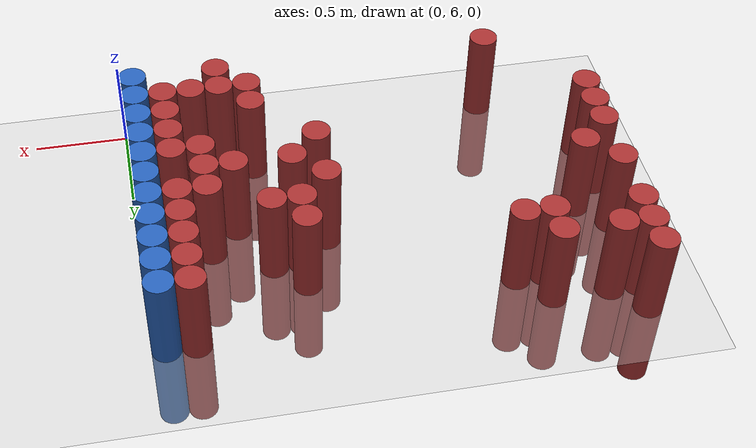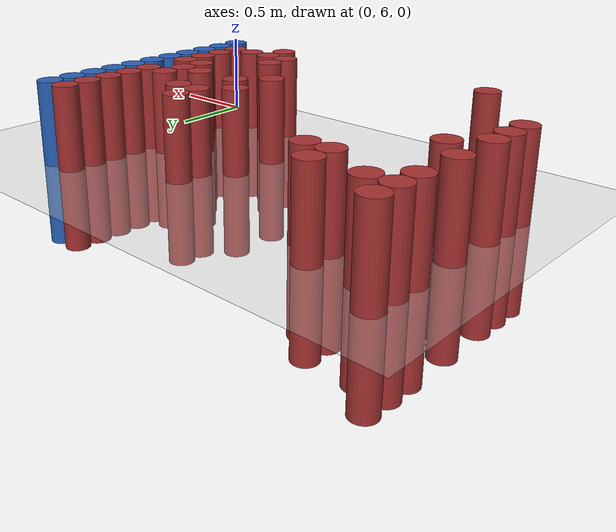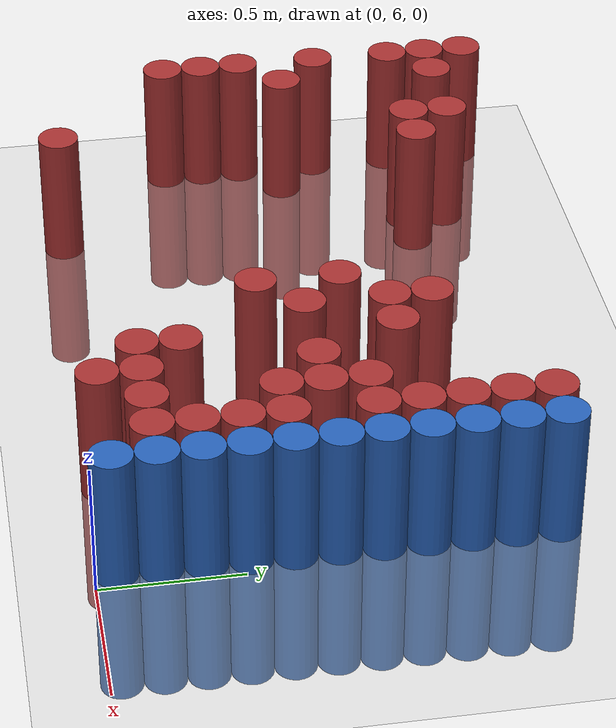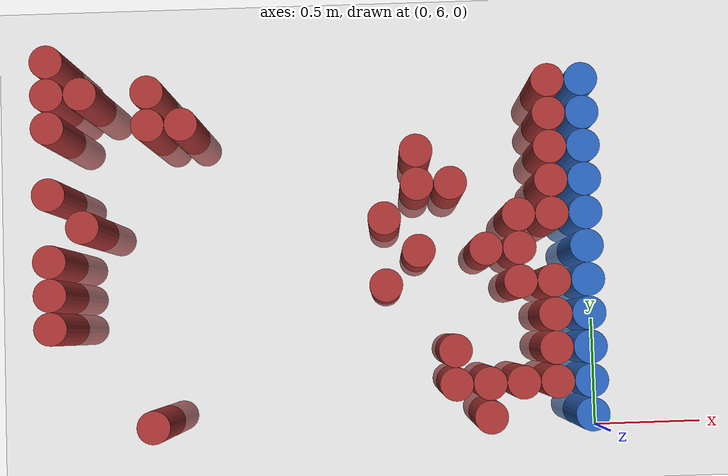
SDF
<sdf version="1.6">
 <world name="default">
  <model name="ground_plane">
   <static>1</static>
   <link name="link">
    <collision name="collision">
     <geometry><plane><normal>0 0 1</normal><size>100 100</size></plane></geometry>
     <surface><friction><ode><mu>100</mu><mu2>50</mu2></ode></friction></surface>
    </collision>
    <visual name="visual">
     <cast_shadows>0</cast_shadows>
     <geometry><plane><normal>0 0 1</normal><size>100 100</size></plane></geometry>
     <material>
      <script><uri>file://media/materials/scripts/gazebo.material</uri><name>Gazebo/Grey</name></script>
     </material>
    </visual>
   </link>
  </model>
  <model name="unit_cylinder_221">
   <static>1</static>
   <pose>-2.475000 6.525000 0.000000 0.000000 0.000000 0.000000</pose>
   <link name="link">
    <inertial>
     <mass>1</mass>
     <inertia><ixx>0.145833</ixx><ixy>0</ixy><ixz>0</ixz><iyy>0.145833</iyy><iyz>0</iyz><izz>0.125</izz></inertia>
    </inertial>
    <collision name="collision">
     <geometry><cylinder><radius>0.075000</radius><length>1</length></cylinder></geometry>
    </collision>
    <visual name="visual">
     <geometry><cylinder><radius>0.075000</radius><length>1</length></cylinder></geometry>
     <material>
      <ambient>0.648000 0.192000 0.192000 1</ambient>
      <diffuse>0.648000 0.192000 0.192000 1</diffuse>
     </material>
     <material>
      <script><name>Gazebo/Grey</name><uri>file://media/materials/scripts/gazebo.material</uri></script>
     </material>
    </visual>
   </link>
  </model>
  <model name="unit_cylinder_222">
   <static>1</static>
   <pose>-2.475000 6.675000 0.000000 0.000000 0.000000 0.000000</pose>
   <link name="link">
    <inertial>
     <mass>1</mass>
     <inertia><ixx>0.145833</ixx><ixy>0</ixy><ixz>0</ixz><iyy>0.145833</iyy><iyz>0</iyz><izz>0.125</izz></inertia>
    </inertial>
    <collision name="collision">
     <geometry><cylinder><radius>0.075000</radius><length>1</length></cylinder></geometry>
    </collision>
    <visual name="visual">
     <geometry><cylinder><radius>0.075000</radius><length>1</length></cylinder></geometry>
     <material>
      <ambient>0.648000 0.192000 0.192000 1</ambient>
      <diffuse>0.648000 0.192000 0.192000 1</diffuse>
     </material>
     <material>
      <script><name>Gazebo/Grey</name><uri>file://media/materials/scripts/gazebo.material</uri></script>
     </material>
    </visual>
   </link>
  </model>
  <model name="unit_cylinder_223">
   <static>1</static>
   <pose>-2.475000 6.825000 0.000000 0.000000 0.000000 0.000000</pose>
   <link name="link">
    <inertial>
     <mass>1</mass>
     <inertia><ixx>0.145833</ixx><ixy>0</ixy><ixz>0</ixz><iyy>0.145833</iyy><iyz>0</iyz><izz>0.125</izz></inertia>
    </inertial>
    <collision name="collision">
     <geometry><cylinder><radius>0.075000</radius><length>1</length></cylinder></geometry>
    </collision>
    <visual name="visual">
     <geometry><cylinder><radius>0.075000</radius><length>1</length></cylinder></geometry>
     <material>
      <ambient>0.648000 0.192000 0.192000 1</ambient>
      <diffuse>0.648000 0.192000 0.192000 1</diffuse>
     </material>
     <material>
      <script><name>Gazebo/Grey</name><uri>file://media/materials/scripts/gazebo.material</uri></script>
     </material>
    </visual>
   </link>
  </model>
  <model name="unit_cylinder_224">
   <static>1</static>
   <pose>-2.475000 7.125000 0.000000 0.000000 0.000000 0.000000</pose>
   <link name="link">
    <inertial>
     <mass>1</mass>
     <inertia><ixx>0.145833</ixx><ixy>0</ixy><ixz>0</ixz><iyy>0.145833</iyy><iyz>0</iyz><izz>0.125</izz></inertia>
    </inertial>
    <collision name="collision">
     <geometry><cylinder><radius>0.075000</radius><length>1</length></cylinder></geometry>
    </collision>
    <visual name="visual">
     <geometry><cylinder><radius>0.075000</radius><length>1</length></cylinder></geometry>
     <material>
      <ambient>0.648000 0.192000 0.192000 1</ambient>
      <diffuse>0.648000 0.192000 0.192000 1</diffuse>
     </material>
     <material>
      <script><name>Gazebo/Grey</name><uri>file://media/materials/scripts/gazebo.material</uri></script>
     </material>
    </visual>
   </link>
  </model>
  <model name="unit_cylinder_225">
   <static>1</static>
   <pose>-2.475000 7.425000 0.000000 0.000000 0.000000 0.000000</pose>
   <link name="link">
    <inertial>
     <mass>1</mass>
     <inertia><ixx>0.145833</ixx><ixy>0</ixy><ixz>0</ixz><iyy>0.145833</iyy><iyz>0</iyz><izz>0.125</izz></inertia>
    </inertial>
    <collision name="collision">
     <geometry><cylinder><radius>0.075000</radius><length>1</length></cylinder></geometry>
    </collision>
    <visual name="visual">
     <geometry><cylinder><radius>0.075000</radius><length>1</length></cylinder></geometry>
     <material>
      <ambient>0.648000 0.192000 0.192000 1</ambient>
      <diffuse>0.648000 0.192000 0.192000 1</diffuse>
     </material>
     <material>
      <script><name>Gazebo/Grey</name><uri>file://media/materials/scripts/gazebo.material</uri></script>
     </material>
    </visual>
   </link>
  </model>
  <model name="unit_cylinder_226">
   <static>1</static>
   <pose>-2.475000 7.575000 0.000000 0.000000 0.000000 0.000000</pose>
   <link name="link">
    <inertial>
     <mass>1</mass>
     <inertia><ixx>0.145833</ixx><ixy>0</ixy><ixz>0</ixz><iyy>0.145833</iyy><iyz>0</iyz><izz>0.125</izz></inertia>
    </inertial>
    <collision name="collision">
     <geometry><cylinder><radius>0.075000</radius><length>1</length></cylinder></geometry>
    </collision>
    <visual name="visual">
     <geometry><cylinder><radius>0.075000</radius><length>1</length></cylinder></geometry>
     <material>
      <ambient>0.648000 0.192000 0.192000 1</ambient>
      <diffuse>0.648000 0.192000 0.192000 1</diffuse>
     </material>
     <material>
      <script><name>Gazebo/Grey</name><uri>file://media/materials/scripts/gazebo.material</uri></script>
     </material>
    </visual>
   </link>
  </model>
  <model name="unit_cylinder_227">
   <static>1</static>
   <pose>-2.475000 7.725000 0.000000 0.000000 0.000000 0.000000</pose>
   <link name="link">
    <inertial>
     <mass>1</mass>
     <inertia><ixx>0.145833</ixx><ixy>0</ixy><ixz>0</ixz><iyy>0.145833</iyy><iyz>0</iyz><izz>0.125</izz></inertia>
    </inertial>
    <collision name="collision">
     <geometry><cylinder><radius>0.075000</radius><length>1</length></cylinder></geometry>
    </collision>
    <visual name="visual">
     <geometry><cylinder><radius>0.075000</radius><length>1</length></cylinder></geometry>
     <material>
      <ambient>0.648000 0.192000 0.192000 1</ambient>
      <diffuse>0.648000 0.192000 0.192000 1</diffuse>
     </material>
     <material>
      <script><name>Gazebo/Grey</name><uri>file://media/materials/scripts/gazebo.material</uri></script>
     </material>
    </visual>
   </link>
  </model>
  <model name="unit_cylinder_235">
   <static>1</static>
   <pose>-2.325000 6.975000 0.000000 0.000000 0.000000 0.000000</pose>
   <link name="link">
    <inertial>
     <mass>1</mass>
     <inertia><ixx>0.145833</ixx><ixy>0</ixy><ixz>0</ixz><iyy>0.145833</iyy><iyz>0</iyz><izz>0.125</izz></inertia>
    </inertial>
    <collision name="collision">
     <geometry><cylinder><radius>0.075000</radius><length>1</length></cylinder></geometry>
    </collision>
    <visual name="visual">
     <geometry><cylinder><radius>0.075000</radius><length>1</length></cylinder></geometry>
     <material>
      <ambient>0.648000 0.192000 0.192000 1</ambient>
      <diffuse>0.648000 0.192000 0.192000 1</diffuse>
     </material>
     <material>
      <script><name>Gazebo/Grey</name><uri>file://media/materials/scripts/gazebo.material</uri></script>
     </material>
    </visual>
   </link>
  </model>
  <model name="unit_cylinder_236">
   <static>1</static>
   <pose>-2.325000 7.575000 0.000000 0.000000 0.000000 0.000000</pose>
   <link name="link">
    <inertial>
     <mass>1</mass>
     <inertia><ixx>0.145833</ixx><ixy>0</ixy><ixz>0</ixz><iyy>0.145833</iyy><iyz>0</iyz><izz>0.125</izz></inertia>
    </inertial>
    <collision name="collision">
     <geometry><cylinder><radius>0.075000</radius><length>1</length></cylinder></geometry>
    </collision>
    <visual name="visual">
     <geometry><cylinder><radius>0.075000</radius><length>1</length></cylinder></geometry>
     <material>
      <ambient>0.648000 0.192000 0.192000 1</ambient>
      <diffuse>0.648000 0.192000 0.192000 1</diffuse>
     </material>
     <material>
      <script><name>Gazebo/Grey</name><uri>file://media/materials/scripts/gazebo.material</uri></script>
     </material>
    </visual>
   </link>
  </model>
  <model name="unit_cylinder_247">
   <static>1</static>
   <pose>-2.025000 6.075000 0.000000 0.000000 0.000000 0.000000</pose>
   <link name="link">
    <inertial>
     <mass>1</mass>
     <inertia><ixx>0.145833</ixx><ixy>0</ixy><ixz>0</ixz><iyy>0.145833</iyy><iyz>0</iyz><izz>0.125</izz></inertia>
    </inertial>
    <collision name="collision">
     <geometry><cylinder><radius>0.075000</radius><length>1</length></cylinder></geometry>
    </collision>
    <visual name="visual">
     <geometry><cylinder><radius>0.075000</radius><length>1</length></cylinder></geometry>
     <material>
      <ambient>0.648000 0.192000 0.192000 1</ambient>
      <diffuse>0.648000 0.192000 0.192000 1</diffuse>
     </material>
     <material>
      <script><name>Gazebo/Grey</name><uri>file://media/materials/scripts/gazebo.material</uri></script>
     </material>
    </visual>
   </link>
  </model>
  <model name="unit_cylinder_248">
   <static>1</static>
   <pose>-2.025000 7.425000 0.000000 0.000000 0.000000 0.000000</pose>
   <link name="link">
    <inertial>
     <mass>1</mass>
     <inertia><ixx>0.145833</ixx><ixy>0</ixy><ixz>0</ixz><iyy>0.145833</iyy><iyz>0</iyz><izz>0.125</izz></inertia>
    </inertial>
    <collision name="collision">
     <geometry><cylinder><radius>0.075000</radius><length>1</length></cylinder></geometry>
    </collision>
    <visual name="visual">
     <geometry><cylinder><radius>0.075000</radius><length>1</length></cylinder></geometry>
     <material>
      <ambient>0.648000 0.192000 0.192000 1</ambient>
      <diffuse>0.648000 0.192000 0.192000 1</diffuse>
     </material>
     <material>
      <script><name>Gazebo/Grey</name><uri>file://media/materials/scripts/gazebo.material</uri></script>
     </material>
    </visual>
   </link>
  </model>
  <model name="unit_cylinder_249">
   <static>1</static>
   <pose>-2.025000 7.575000 0.000000 0.000000 0.000000 0.000000</pose>
   <link name="link">
    <inertial>
     <mass>1</mass>
     <inertia><ixx>0.145833</ixx><ixy>0</ixy><ixz>0</ixz><iyy>0.145833</iyy><iyz>0</iyz><izz>0.125</izz></inertia>
    </inertial>
    <collision name="collision">
     <geometry><cylinder><radius>0.075000</radius><length>1</length></cylinder></geometry>
    </collision>
    <visual name="visual">
     <geometry><cylinder><radius>0.075000</radius><length>1</length></cylinder></geometry>
     <material>
      <ambient>0.648000 0.192000 0.192000 1</ambient>
      <diffuse>0.648000 0.192000 0.192000 1</diffuse>
     </material>
     <material>
      <script><name>Gazebo/Grey</name><uri>file://media/materials/scripts/gazebo.material</uri></script>
     </material>
    </visual>
   </link>
  </model>
  <model name="unit_cylinder_251">
   <static>1</static>
   <pose>-1.875000 7.425000 0.000000 0.000000 0.000000 0.000000</pose>
   <link name="link">
    <inertial>
     <mass>1</mass>
     <inertia><ixx>0.145833</ixx><ixy>0</ixy><ixz>0</ixz><iyy>0.145833</iyy><iyz>0</iyz><izz>0.125</izz></inertia>
    </inertial>
    <collision name="collision">
     <geometry><cylinder><radius>0.075000</radius><length>1</length></cylinder></geometry>
    </collision>
    <visual name="visual">
     <geometry><cylinder><radius>0.075000</radius><length>1</length></cylinder></geometry>
     <material>
      <ambient>0.648000 0.192000 0.192000 1</ambient>
      <diffuse>0.648000 0.192000 0.192000 1</diffuse>
     </material>
     <material>
      <script><name>Gazebo/Grey</name><uri>file://media/materials/scripts/gazebo.material</uri></script>
     </material>
    </visual>
   </link>
  </model>
  <model name="unit_cylinder_255">
   <static>1</static>
   <pose>-0.975000 6.675000 0.000000 0.000000 0.000000 0.000000</pose>
   <link name="link">
    <inertial>
     <mass>1</mass>
     <inertia><ixx>0.145833</ixx><ixy>0</ixy><ixz>0</ixz><iyy>0.145833</iyy><iyz>0</iyz><izz>0.125</izz></inertia>
    </inertial>
    <collision name="collision">
     <geometry><cylinder><radius>0.075000</radius><length>1</length></cylinder></geometry>
    </collision>
    <visual name="visual">
     <geometry><cylinder><radius>0.075000</radius><length>1</length></cylinder></geometry>
     <material>
      <ambient>0.648000 0.192000 0.192000 1</ambient>
      <diffuse>0.648000 0.192000 0.192000 1</diffuse>
     </material>
     <material>
      <script><name>Gazebo/Grey</name><uri>file://media/materials/scripts/gazebo.material</uri></script>
     </material>
    </visual>
   </link>
  </model>
  <model name="unit_cylinder_256">
   <static>1</static>
   <pose>-0.975000 6.975000 0.000000 0.000000 0.000000 0.000000</pose>
   <link name="link">
    <inertial>
     <mass>1</mass>
     <inertia><ixx>0.145833</ixx><ixy>0</ixy><ixz>0</ixz><iyy>0.145833</iyy><iyz>0</iyz><izz>0.125</izz></inertia>
    </inertial>
    <collision name="collision">
     <geometry><cylinder><radius>0.075000</radius><length>1</length></cylinder></geometry>
    </collision>
    <visual name="visual">
     <geometry><cylinder><radius>0.075000</radius><length>1</length></cylinder></geometry>
     <material>
      <ambient>0.648000 0.192000 0.192000 1</ambient>
      <diffuse>0.648000 0.192000 0.192000 1</diffuse>
     </material>
     <material>
      <script><name>Gazebo/Grey</name><uri>file://media/materials/scripts/gazebo.material</uri></script>
     </material>
    </visual>
   </link>
  </model>
  <model name="unit_cylinder_261">
   <static>1</static>
   <pose>-0.825000 6.825000 0.000000 0.000000 0.000000 0.000000</pose>
   <link name="link">
    <inertial>
     <mass>1</mass>
     <inertia><ixx>0.145833</ixx><ixy>0</ixy><ixz>0</ixz><iyy>0.145833</iyy><iyz>0</iyz><izz>0.125</izz></inertia>
    </inertial>
    <collision name="collision">
     <geometry><cylinder><radius>0.075000</radius><length>1</length></cylinder></geometry>
    </collision>
    <visual name="visual">
     <geometry><cylinder><radius>0.075000</radius><length>1</length></cylinder></geometry>
     <material>
      <ambient>0.648000 0.192000 0.192000 1</ambient>
      <diffuse>0.648000 0.192000 0.192000 1</diffuse>
     </material>
     <material>
      <script><name>Gazebo/Grey</name><uri>file://media/materials/scripts/gazebo.material</uri></script>
     </material>
    </visual>
   </link>
  </model>
  <model name="unit_cylinder_262">
   <static>1</static>
   <pose>-0.825000 7.125000 0.000000 0.000000 0.000000 0.000000</pose>
   <link name="link">
    <inertial>
     <mass>1</mass>
     <inertia><ixx>0.145833</ixx><ixy>0</ixy><ixz>0</ixz><iyy>0.145833</iyy><iyz>0</iyz><izz>0.125</izz></inertia>
    </inertial>
    <collision name="collision">
     <geometry><cylinder><radius>0.075000</radius><length>1</length></cylinder></geometry>
    </collision>
    <visual name="visual">
     <geometry><cylinder><radius>0.075000</radius><length>1</length></cylinder></geometry>
     <material>
      <ambient>0.648000 0.192000 0.192000 1</ambient>
      <diffuse>0.648000 0.192000 0.192000 1</diffuse>
     </material>
     <material>
      <script><name>Gazebo/Grey</name><uri>file://media/materials/scripts/gazebo.material</uri></script>
     </material>
    </visual>
   </link>
  </model>
  <model name="unit_cylinder_263">
   <static>1</static>
   <pose>-0.825000 7.275000 0.000000 0.000000 0.000000 0.000000</pose>
   <link name="link">
    <inertial>
     <mass>1</mass>
     <inertia><ixx>0.145833</ixx><ixy>0</ixy><ixz>0</ixz><iyy>0.145833</iyy><iyz>0</iyz><izz>0.125</izz></inertia>
    </inertial>
    <collision name="collision">
     <geometry><cylinder><radius>0.075000</radius><length>1</length></cylinder></geometry>
    </collision>
    <visual name="visual">
     <geometry><cylinder><radius>0.075000</radius><length>1</length></cylinder></geometry>
     <material>
      <ambient>0.648000 0.192000 0.192000 1</ambient>
      <diffuse>0.648000 0.192000 0.192000 1</diffuse>
     </material>
     <material>
      <script><name>Gazebo/Grey</name><uri>file://media/materials/scripts/gazebo.material</uri></script>
     </material>
    </visual>
   </link>
  </model>
  <model name="unit_cylinder_265">
   <static>1</static>
   <pose>-0.675000 6.225000 0.000000 0.000000 0.000000 0.000000</pose>
   <link name="link">
    <inertial>
     <mass>1</mass>
     <inertia><ixx>0.145833</ixx><ixy>0</ixy><ixz>0</ixz><iyy>0.145833</iyy><iyz>0</iyz><izz>0.125</izz></inertia>
    </inertial>
    <collision name="collision">
     <geometry><cylinder><radius>0.075000</radius><length>1</length></cylinder></geometry>
    </collision>
    <visual name="visual">
     <geometry><cylinder><radius>0.075000</radius><length>1</length></cylinder></geometry>
     <material>
      <ambient>0.648000 0.192000 0.192000 1</ambient>
      <diffuse>0.648000 0.192000 0.192000 1</diffuse>
     </material>
     <material>
      <script><name>Gazebo/Grey</name><uri>file://media/materials/scripts/gazebo.material</uri></script>
     </material>
    </visual>
   </link>
  </model>
  <model name="unit_cylinder_266">
   <static>1</static>
   <pose>-0.675000 6.375000 0.000000 0.000000 0.000000 0.000000</pose>
   <link name="link">
    <inertial>
     <mass>1</mass>
     <inertia><ixx>0.145833</ixx><ixy>0</ixy><ixz>0</ixz><iyy>0.145833</iyy><iyz>0</iyz><izz>0.125</izz></inertia>
    </inertial>
    <collision name="collision">
     <geometry><cylinder><radius>0.075000</radius><length>1</length></cylinder></geometry>
    </collision>
    <visual name="visual">
     <geometry><cylinder><radius>0.075000</radius><length>1</length></cylinder></geometry>
     <material>
      <ambient>0.648000 0.192000 0.192000 1</ambient>
      <diffuse>0.648000 0.192000 0.192000 1</diffuse>
     </material>
     <material>
      <script><name>Gazebo/Grey</name><uri>file://media/materials/scripts/gazebo.material</uri></script>
     </material>
    </visual>
   </link>
  </model>
  <model name="unit_cylinder_267">
   <static>1</static>
   <pose>-0.675000 7.125000 0.000000 0.000000 0.000000 0.000000</pose>
   <link name="link">
    <inertial>
     <mass>1</mass>
     <inertia><ixx>0.145833</ixx><ixy>0</ixy><ixz>0</ixz><iyy>0.145833</iyy><iyz>0</iyz><izz>0.125</izz></inertia>
    </inertial>
    <collision name="collision">
     <geometry><cylinder><radius>0.075000</radius><length>1</length></cylinder></geometry>
    </collision>
    <visual name="visual">
     <geometry><cylinder><radius>0.075000</radius><length>1</length></cylinder></geometry>
     <material>
      <ambient>0.648000 0.192000 0.192000 1</ambient>
      <diffuse>0.648000 0.192000 0.192000 1</diffuse>
     </material>
     <material>
      <script><name>Gazebo/Grey</name><uri>file://media/materials/scripts/gazebo.material</uri></script>
     </material>
    </visual>
   </link>
  </model>
  <model name="unit_cylinder_271">
   <static>1</static>
   <pose>-0.525000 6.075000 0.000000 0.000000 0.000000 0.000000</pose>
   <link name="link">
    <inertial>
     <mass>1</mass>
     <inertia><ixx>0.145833</ixx><ixy>0</ixy><ixz>0</ixz><iyy>0.145833</iyy><iyz>0</iyz><izz>0.125</izz></inertia>
    </inertial>
    <collision name="collision">
     <geometry><cylinder><radius>0.075000</radius><length>1</length></cylinder></geometry>
    </collision>
    <visual name="visual">
     <geometry><cylinder><radius>0.075000</radius><length>1</length></cylinder></geometry>
     <material>
      <ambient>0.648000 0.192000 0.192000 1</ambient>
      <diffuse>0.648000 0.192000 0.192000 1</diffuse>
     </material>
     <material>
      <script><name>Gazebo/Grey</name><uri>file://media/materials/scripts/gazebo.material</uri></script>
     </material>
    </visual>
   </link>
  </model>
  <model name="unit_cylinder_272">
   <static>1</static>
   <pose>-0.525000 6.225000 0.000000 0.000000 0.000000 0.000000</pose>
   <link name="link">
    <inertial>
     <mass>1</mass>
     <inertia><ixx>0.145833</ixx><ixy>0</ixy><ixz>0</ixz><iyy>0.145833</iyy><iyz>0</iyz><izz>0.125</izz></inertia>
    </inertial>
    <collision name="collision">
     <geometry><cylinder><radius>0.075000</radius><length>1</length></cylinder></geometry>
    </collision>
    <visual name="visual">
     <geometry><cylinder><radius>0.075000</radius><length>1</length></cylinder></geometry>
     <material>
      <ambient>0.648000 0.192000 0.192000 1</ambient>
      <diffuse>0.648000 0.192000 0.192000 1</diffuse>
     </material>
     <material>
      <script><name>Gazebo/Grey</name><uri>file://media/materials/scripts/gazebo.material</uri></script>
     </material>
    </visual>
   </link>
  </model>
  <model name="unit_cylinder_273">
   <static>1</static>
   <pose>-0.525000 6.825000 0.000000 0.000000 0.000000 0.000000</pose>
   <link name="link">
    <inertial>
     <mass>1</mass>
     <inertia><ixx>0.145833</ixx><ixy>0</ixy><ixz>0</ixz><iyy>0.145833</iyy><iyz>0</iyz><izz>0.125</izz></inertia>
    </inertial>
    <collision name="collision">
     <geometry><cylinder><radius>0.075000</radius><length>1</length></cylinder></geometry>
    </collision>
    <visual name="visual">
     <geometry><cylinder><radius>0.075000</radius><length>1</length></cylinder></geometry>
     <material>
      <ambient>0.648000 0.192000 0.192000 1</ambient>
      <diffuse>0.648000 0.192000 0.192000 1</diffuse>
     </material>
     <material>
      <script><name>Gazebo/Grey</name><uri>file://media/materials/scripts/gazebo.material</uri></script>
     </material>
    </visual>
   </link>
  </model>
  <model name="unit_cylinder_279">
   <static>1</static>
   <pose>-0.375000 6.225000 0.000000 0.000000 0.000000 0.000000</pose>
   <link name="link">
    <inertial>
     <mass>1</mass>
     <inertia><ixx>0.145833</ixx><ixy>0</ixy><ixz>0</ixz><iyy>0.145833</iyy><iyz>0</iyz><izz>0.125</izz></inertia>
    </inertial>
    <collision name="collision">
     <geometry><cylinder><radius>0.075000</radius><length>1</length></cylinder></geometry>
    </collision>
    <visual name="visual">
     <geometry><cylinder><radius>0.075000</radius><length>1</length></cylinder></geometry>
     <material>
      <ambient>0.648000 0.192000 0.192000 1</ambient>
      <diffuse>0.648000 0.192000 0.192000 1</diffuse>
     </material>
     <material>
      <script><name>Gazebo/Grey</name><uri>file://media/materials/scripts/gazebo.material</uri></script>
     </material>
    </visual>
   </link>
  </model>
  <model name="unit_cylinder_280">
   <static>1</static>
   <pose>-0.375000 6.675000 0.000000 0.000000 0.000000 0.000000</pose>
   <link name="link">
    <inertial>
     <mass>1</mass>
     <inertia><ixx>0.145833</ixx><ixy>0</ixy><ixz>0</ixz><iyy>0.145833</iyy><iyz>0</iyz><izz>0.125</izz></inertia>
    </inertial>
    <collision name="collision">
     <geometry><cylinder><radius>0.075000</radius><length>1</length></cylinder></geometry>
    </collision>
    <visual name="visual">
     <geometry><cylinder><radius>0.075000</radius><length>1</length></cylinder></geometry>
     <material>
      <ambient>0.648000 0.192000 0.192000 1</ambient>
      <diffuse>0.648000 0.192000 0.192000 1</diffuse>
     </material>
     <material>
      <script><name>Gazebo/Grey</name><uri>file://media/materials/scripts/gazebo.material</uri></script>
     </material>
    </visual>
   </link>
  </model>
  <model name="unit_cylinder_281">
   <static>1</static>
   <pose>-0.375000 6.825000 0.000000 0.000000 0.000000 0.000000</pose>
   <link name="link">
    <inertial>
     <mass>1</mass>
     <inertia><ixx>0.145833</ixx><ixy>0</ixy><ixz>0</ixz><iyy>0.145833</iyy><iyz>0</iyz><izz>0.125</izz></inertia>
    </inertial>
    <collision name="collision">
     <geometry><cylinder><radius>0.075000</radius><length>1</length></cylinder></geometry>
    </collision>
    <visual name="visual">
     <geometry><cylinder><radius>0.075000</radius><length>1</length></cylinder></geometry>
     <material>
      <ambient>0.648000 0.192000 0.192000 1</ambient>
      <diffuse>0.648000 0.192000 0.192000 1</diffuse>
     </material>
     <material>
      <script><name>Gazebo/Grey</name><uri>file://media/materials/scripts/gazebo.material</uri></script>
     </material>
    </visual>
   </link>
  </model>
  <model name="unit_cylinder_282">
   <static>1</static>
   <pose>-0.375000 6.975000 0.000000 0.000000 0.000000 0.000000</pose>
   <link name="link">
    <inertial>
     <mass>1</mass>
     <inertia><ixx>0.145833</ixx><ixy>0</ixy><ixz>0</ixz><iyy>0.145833</iyy><iyz>0</iyz><izz>0.125</izz></inertia>
    </inertial>
    <collision name="collision">
     <geometry><cylinder><radius>0.075000</radius><length>1</length></cylinder></geometry>
    </collision>
    <visual name="visual">
     <geometry><cylinder><radius>0.075000</radius><length>1</length></cylinder></geometry>
     <material>
      <ambient>0.648000 0.192000 0.192000 1</ambient>
      <diffuse>0.648000 0.192000 0.192000 1</diffuse>
     </material>
     <material>
      <script><name>Gazebo/Grey</name><uri>file://media/materials/scripts/gazebo.material</uri></script>
     </material>
    </visual>
   </link>
  </model>
  <model name="unit_cylinder_291">
   <static>1</static>
   <pose>-0.225000 6.225000 0.000000 0.000000 0.000000 0.000000</pose>
   <link name="link">
    <inertial>
     <mass>1</mass>
     <inertia><ixx>0.145833</ixx><ixy>0</ixy><ixz>0</ixz><iyy>0.145833</iyy><iyz>0</iyz><izz>0.125</izz></inertia>
    </inertial>
    <collision name="collision">
     <geometry><cylinder><radius>0.075000</radius><length>1</length></cylinder></geometry>
    </collision>
    <visual name="visual">
     <geometry><cylinder><radius>0.075000</radius><length>1</length></cylinder></geometry>
     <material>
      <ambient>0.648000 0.192000 0.192000 1</ambient>
      <diffuse>0.648000 0.192000 0.192000 1</diffuse>
     </material>
     <material>
      <script><name>Gazebo/Grey</name><uri>file://media/materials/scripts/gazebo.material</uri></script>
     </material>
    </visual>
   </link>
  </model>
  <model name="unit_cylinder_292">
   <static>1</static>
   <pose>-0.225000 6.375000 0.000000 0.000000 0.000000 0.000000</pose>
   <link name="link">
    <inertial>
     <mass>1</mass>
     <inertia><ixx>0.145833</ixx><ixy>0</ixy><ixz>0</ixz><iyy>0.145833</iyy><iyz>0</iyz><izz>0.125</izz></inertia>
    </inertial>
    <collision name="collision">
     <geometry><cylinder><radius>0.075000</radius><length>1</length></cylinder></geometry>
    </collision>
    <visual name="visual">
     <geometry><cylinder><radius>0.075000</radius><length>1</length></cylinder></geometry>
     <material>
      <ambient>0.648000 0.192000 0.192000 1</ambient>
      <diffuse>0.648000 0.192000 0.192000 1</diffuse>
     </material>
     <material>
      <script><name>Gazebo/Grey</name><uri>file://media/materials/scripts/gazebo.material</uri></script>
     </material>
    </visual>
   </link>
  </model>
  <model name="unit_cylinder_293">
   <static>1</static>
   <pose>-0.225000 6.525000 0.000000 0.000000 0.000000 0.000000</pose>
   <link name="link">
    <inertial>
     <mass>1</mass>
     <inertia><ixx>0.145833</ixx><ixy>0</ixy><ixz>0</ixz><iyy>0.145833</iyy><iyz>0</iyz><izz>0.125</izz></inertia>
    </inertial>
    <collision name="collision">
     <geometry><cylinder><radius>0.075000</radius><length>1</length></cylinder></geometry>
    </collision>
    <visual name="visual">
     <geometry><cylinder><radius>0.075000</radius><length>1</length></cylinder></geometry>
     <material>
      <ambient>0.648000 0.192000 0.192000 1</ambient>
      <diffuse>0.648000 0.192000 0.192000 1</diffuse>
     </material>
     <material>
      <script><name>Gazebo/Grey</name><uri>file://media/materials/scripts/gazebo.material</uri></script>
     </material>
    </visual>
   </link>
  </model>
  <model name="unit_cylinder_294">
   <static>1</static>
   <pose>-0.225000 6.675000 0.000000 0.000000 0.000000 0.000000</pose>
   <link name="link">
    <inertial>
     <mass>1</mass>
     <inertia><ixx>0.145833</ixx><ixy>0</ixy><ixz>0</ixz><iyy>0.145833</iyy><iyz>0</iyz><izz>0.125</izz></inertia>
    </inertial>
    <collision name="collision">
     <geometry><cylinder><radius>0.075000</radius><length>1</length></cylinder></geometry>
    </collision>
    <visual name="visual">
     <geometry><cylinder><radius>0.075000</radius><length>1</length></cylinder></geometry>
     <material>
      <ambient>0.648000 0.192000 0.192000 1</ambient>
      <diffuse>0.648000 0.192000 0.192000 1</diffuse>
     </material>
     <material>
      <script><name>Gazebo/Grey</name><uri>file://media/materials/scripts/gazebo.material</uri></script>
     </material>
    </visual>
   </link>
  </model>
  <model name="unit_cylinder_295">
   <static>1</static>
   <pose>-0.225000 6.975000 0.000000 0.000000 0.000000 0.000000</pose>
   <link name="link">
    <inertial>
     <mass>1</mass>
     <inertia><ixx>0.145833</ixx><ixy>0</ixy><ixz>0</ixz><iyy>0.145833</iyy><iyz>0</iyz><izz>0.125</izz></inertia>
    </inertial>
    <collision name="collision">
     <geometry><cylinder><radius>0.075000</radius><length>1</length></cylinder></geometry>
    </collision>
    <visual name="visual">
     <geometry><cylinder><radius>0.075000</radius><length>1</length></cylinder></geometry>
     <material>
      <ambient>0.648000 0.192000 0.192000 1</ambient>
      <diffuse>0.648000 0.192000 0.192000 1</diffuse>
     </material>
     <material>
      <script><name>Gazebo/Grey</name><uri>file://media/materials/scripts/gazebo.material</uri></script>
     </material>
    </visual>
   </link>
  </model>
  <model name="unit_cylinder_296">
   <static>1</static>
   <pose>-0.225000 7.125000 0.000000 0.000000 0.000000 0.000000</pose>
   <link name="link">
    <inertial>
     <mass>1</mass>
     <inertia><ixx>0.145833</ixx><ixy>0</ixy><ixz>0</ixz><iyy>0.145833</iyy><iyz>0</iyz><izz>0.125</izz></inertia>
    </inertial>
    <collision name="collision">
     <geometry><cylinder><radius>0.075000</radius><length>1</length></cylinder></geometry>
    </collision>
    <visual name="visual">
     <geometry><cylinder><radius>0.075000</radius><length>1</length></cylinder></geometry>
     <material>
      <ambient>0.648000 0.192000 0.192000 1</ambient>
      <diffuse>0.648000 0.192000 0.192000 1</diffuse>
     </material>
     <material>
      <script><name>Gazebo/Grey</name><uri>file://media/materials/scripts/gazebo.material</uri></script>
     </material>
    </visual>
   </link>
  </model>
  <model name="unit_cylinder_297">
   <static>1</static>
   <pose>-0.225000 7.275000 0.000000 0.000000 0.000000 0.000000</pose>
   <link name="link">
    <inertial>
     <mass>1</mass>
     <inertia><ixx>0.145833</ixx><ixy>0</ixy><ixz>0</ixz><iyy>0.145833</iyy><iyz>0</iyz><izz>0.125</izz></inertia>
    </inertial>
    <collision name="collision">
     <geometry><cylinder><radius>0.075000</radius><length>1</length></cylinder></geometry>
    </collision>
    <visual name="visual">
     <geometry><cylinder><radius>0.075000</radius><length>1</length></cylinder></geometry>
     <material>
      <ambient>0.648000 0.192000 0.192000 1</ambient>
      <diffuse>0.648000 0.192000 0.192000 1</diffuse>
     </material>
     <material>
      <script><name>Gazebo/Grey</name><uri>file://media/materials/scripts/gazebo.material</uri></script>
     </material>
    </visual>
   </link>
  </model>
  <model name="unit_cylinder_298">
   <static>1</static>
   <pose>-0.225000 7.425000 0.000000 0.000000 0.000000 0.000000</pose>
   <link name="link">
    <inertial>
     <mass>1</mass>
     <inertia><ixx>0.145833</ixx><ixy>0</ixy><ixz>0</ixz><iyy>0.145833</iyy><iyz>0</iyz><izz>0.125</izz></inertia>
    </inertial>
    <collision name="collision">
     <geometry><cylinder><radius>0.075000</radius><length>1</length></cylinder></geometry>
    </collision>
    <visual name="visual">
     <geometry><cylinder><radius>0.075000</radius><length>1</length></cylinder></geometry>
     <material>
      <ambient>0.648000 0.192000 0.192000 1</ambient>
      <diffuse>0.648000 0.192000 0.192000 1</diffuse>
     </material>
     <material>
      <script><name>Gazebo/Grey</name><uri>file://media/materials/scripts/gazebo.material</uri></script>
     </material>
    </visual>
   </link>
  </model>
  <model name="unit_cylinder_299">
   <static>1</static>
   <pose>-0.225000 7.575000 0.000000 0.000000 0.000000 0.000000</pose>
   <link name="link">
    <inertial>
     <mass>1</mass>
     <inertia><ixx>0.145833</ixx><ixy>0</ixy><ixz>0</ixz><iyy>0.145833</iyy><iyz>0</iyz><izz>0.125</izz></inertia>
    </inertial>
    <collision name="collision">
     <geometry><cylinder><radius>0.075000</radius><length>1</length></cylinder></geometry>
    </collision>
    <visual name="visual">
     <geometry><cylinder><radius>0.075000</radius><length>1</length></cylinder></geometry>
     <material>
      <ambient>0.648000 0.192000 0.192000 1</ambient>
      <diffuse>0.648000 0.192000 0.192000 1</diffuse>
     </material>
     <material>
      <script><name>Gazebo/Grey</name><uri>file://media/materials/scripts/gazebo.material</uri></script>
     </material>
    </visual>
   </link>
  </model>
  <model name="unit_cylinder_312">
   <static>1</static>
   <pose>-0.075000 6.075000 0.000000 0.000000 0.000000 0.000000</pose>
   <link name="link">
    <inertial>
     <mass>1</mass>
     <inertia><ixx>0.145833</ixx><ixy>0</ixy><ixz>0</ixz><iyy>0.145833</iyy><iyz>0</iyz><izz>0.125</izz></inertia>
    </inertial>
    <collision name="collision">
     <geometry><cylinder><radius>0.075000</radius><length>1</length></cylinder></geometry>
    </collision>
    <visual name="visual">
     <geometry><cylinder><radius>0.075000</radius><length>1</length></cylinder></geometry>
     <material>
      <ambient>0.152000 0.379000 0.720000 1</ambient>
      <diffuse>0.152000 0.379000 0.720000 1</diffuse>
     </material>
     <material>
      <script><name>Gazebo/Grey</name><uri>file://media/materials/scripts/gazebo.material</uri></script>
     </material>
    </visual>
   </link>
  </model>
  <model name="unit_cylinder_313">
   <static>1</static>
   <pose>-0.075000 6.225000 0.000000 0.000000 0.000000 0.000000</pose>
   <link name="link">
    <inertial>
     <mass>1</mass>
     <inertia><ixx>0.145833</ixx><ixy>0</ixy><ixz>0</ixz><iyy>0.145833</iyy><iyz>0</iyz><izz>0.125</izz></inertia>
    </inertial>
    <collision name="collision">
     <geometry><cylinder><radius>0.075000</radius><length>1</length></cylinder></geometry>
    </collision>
    <visual name="visual">
     <geometry><cylinder><radius>0.075000</radius><length>1</length></cylinder></geometry>
     <material>
      <ambient>0.152000 0.379000 0.720000 1</ambient>
      <diffuse>0.152000 0.379000 0.720000 1</diffuse>
     </material>
     <material>
      <script><name>Gazebo/Grey</name><uri>file://media/materials/scripts/gazebo.material</uri></script>
     </material>
    </visual>
   </link>
  </model>
  <model name="unit_cylinder_314">
   <static>1</static>
   <pose>-0.075000 6.375000 0.000000 0.000000 0.000000 0.000000</pose>
   <link name="link">
    <inertial>
     <mass>1</mass>
     <inertia><ixx>0.145833</ixx><ixy>0</ixy><ixz>0</ixz><iyy>0.145833</iyy><iyz>0</iyz><izz>0.125</izz></inertia>
    </inertial>
    <collision name="collision">
     <geometry><cylinder><radius>0.075000</radius><length>1</length></cylinder></geometry>
    </collision>
    <visual name="visual">
     <geometry><cylinder><radius>0.075000</radius><length>1</length></cylinder></geometry>
     <material>
      <ambient>0.152000 0.379000 0.720000 1</ambient>
      <diffuse>0.152000 0.379000 0.720000 1</diffuse>
     </material>
     <material>
      <script><name>Gazebo/Grey</name><uri>file://media/materials/scripts/gazebo.material</uri></script>
     </material>
    </visual>
   </link>
  </model>
  <model name="unit_cylinder_315">
   <static>1</static>
   <pose>-0.075000 6.525000 0.000000 0.000000 0.000000 0.000000</pose>
   <link name="link">
    <inertial>
     <mass>1</mass>
     <inertia><ixx>0.145833</ixx><ixy>0</ixy><ixz>0</ixz><iyy>0.145833</iyy><iyz>0</iyz><izz>0.125</izz></inertia>
    </inertial>
    <collision name="collision">
     <geometry><cylinder><radius>0.075000</radius><length>1</length></cylinder></geometry>
    </collision>
    <visual name="visual">
     <geometry><cylinder><radius>0.075000</radius><length>1</length></cylinder></geometry>
     <material>
      <ambient>0.152000 0.379000 0.720000 1</ambient>
      <diffuse>0.152000 0.379000 0.720000 1</diffuse>
     </material>
     <material>
      <script><name>Gazebo/Grey</name><uri>file://media/materials/scripts/gazebo.material</uri></script>
     </material>
    </visual>
   </link>
  </model>
  <model name="unit_cylinder_316">
   <static>1</static>
   <pose>-0.075000 6.675000 0.000000 0.000000 0.000000 0.000000</pose>
   <link name="link">
    <inertial>
     <mass>1</mass>
     <inertia><ixx>0.145833</ixx><ixy>0</ixy><ixz>0</ixz><iyy>0.145833</iyy><iyz>0</iyz><izz>0.125</izz></inertia>
    </inertial>
    <collision name="collision">
     <geometry><cylinder><radius>0.075000</radius><length>1</length></cylinder></geometry>
    </collision>
    <visual name="visual">
     <geometry><cylinder><radius>0.075000</radius><length>1</length></cylinder></geometry>
     <material>
      <ambient>0.152000 0.379000 0.720000 1</ambient>
      <diffuse>0.152000 0.379000 0.720000 1</diffuse>
     </material>
     <material>
      <script><name>Gazebo/Grey</name><uri>file://media/materials/scripts/gazebo.material</uri></script>
     </material>
    </visual>
   </link>
  </model>
  <model name="unit_cylinder_317">
   <static>1</static>
   <pose>-0.075000 6.825000 0.000000 0.000000 0.000000 0.000000</pose>
   <link name="link">
    <inertial>
     <mass>1</mass>
     <inertia><ixx>0.145833</ixx><ixy>0</ixy><ixz>0</ixz><iyy>0.145833</iyy><iyz>0</iyz><izz>0.125</izz></inertia>
    </inertial>
    <collision name="collision">
     <geometry><cylinder><radius>0.075000</radius><length>1</length></cylinder></geometry>
    </collision>
    <visual name="visual">
     <geometry><cylinder><radius>0.075000</radius><length>1</length></cylinder></geometry>
     <material>
      <ambient>0.152000 0.379000 0.720000 1</ambient>
      <diffuse>0.152000 0.379000 0.720000 1</diffuse>
     </material>
     <material>
      <script><name>Gazebo/Grey</name><uri>file://media/materials/scripts/gazebo.material</uri></script>
     </material>
    </visual>
   </link>
  </model>
  <model name="unit_cylinder_318">
   <static>1</static>
   <pose>-0.075000 6.975000 0.000000 0.000000 0.000000 0.000000</pose>
   <link name="link">
    <inertial>
     <mass>1</mass>
     <inertia><ixx>0.145833</ixx><ixy>0</ixy><ixz>0</ixz><iyy>0.145833</iyy><iyz>0</iyz><izz>0.125</izz></inertia>
    </inertial>
    <collision name="collision">
     <geometry><cylinder><radius>0.075000</radius><length>1</length></cylinder></geometry>
    </collision>
    <visual name="visual">
     <geometry><cylinder><radius>0.075000</radius><length>1</length></cylinder></geometry>
     <material>
      <ambient>0.152000 0.379000 0.720000 1</ambient>
      <diffuse>0.152000 0.379000 0.720000 1</diffuse>
     </material>
     <material>
      <script><name>Gazebo/Grey</name><uri>file://media/materials/scripts/gazebo.material</uri></script>
     </material>
    </visual>
   </link>
  </model>
  <model name="unit_cylinder_319">
   <static>1</static>
   <pose>-0.075000 7.125000 0.000000 0.000000 0.000000 0.000000</pose>
   <link name="link">
    <inertial>
     <mass>1</mass>
     <inertia><ixx>0.145833</ixx><ixy>0</ixy><ixz>0</ixz><iyy>0.145833</iyy><iyz>0</iyz><izz>0.125</izz></inertia>
    </inertial>
    <collision name="collision">
     <geometry><cylinder><radius>0.075000</radius><length>1</length></cylinder></geometry>
    </collision>
    <visual name="visual">
     <geometry><cylinder><radius>0.075000</radius><length>1</length></cylinder></geometry>
     <material>
      <ambient>0.152000 0.379000 0.720000 1</ambient>
      <diffuse>0.152000 0.379000 0.720000 1</diffuse>
     </material>
     <material>
      <script><name>Gazebo/Grey</name><uri>file://media/materials/scripts/gazebo.material</uri></script>
     </material>
    </visual>
   </link>
  </model>
  <model name="unit_cylinder_320">
   <static>1</static>
   <pose>-0.075000 7.275000 0.000000 0.000000 0.000000 0.000000</pose>
   <link name="link">
    <inertial>
     <mass>1</mass>
     <inertia><ixx>0.145833</ixx><ixy>0</ixy><ixz>0</ixz><iyy>0.145833</iyy><iyz>0</iyz><izz>0.125</izz></inertia>
    </inertial>
    <collision name="collision">
     <geometry><cylinder><radius>0.075000</radius><length>1</length></cylinder></geometry>
    </collision>
    <visual name="visual">
     <geometry><cylinder><radius>0.075000</radius><length>1</length></cylinder></geometry>
     <material>
      <ambient>0.152000 0.379000 0.720000 1</ambient>
      <diffuse>0.152000 0.379000 0.720000 1</diffuse>
     </material>
     <material>
      <script><name>Gazebo/Grey</name><uri>file://media/materials/scripts/gazebo.material</uri></script>
     </material>
    </visual>
   </link>
  </model>
  <model name="unit_cylinder_321">
   <static>1</static>
   <pose>-0.075000 7.425000 0.000000 0.000000 0.000000 0.000000</pose>
   <link name="link">
    <inertial>
     <mass>1</mass>
     <inertia><ixx>0.145833</ixx><ixy>0</ixy><ixz>0</ixz><iyy>0.145833</iyy><iyz>0</iyz><izz>0.125</izz></inertia>
    </inertial>
    <collision name="collision">
     <geometry><cylinder><radius>0.075000</radius><length>1</length></cylinder></geometry>
    </collision>
    <visual name="visual">
     <geometry><cylinder><radius>0.075000</radius><length>1</length></cylinder></geometry>
     <material>
      <ambient>0.152000 0.379000 0.720000 1</ambient>
      <diffuse>0.152000 0.379000 0.720000 1</diffuse>
     </material>
     <material>
      <script><name>Gazebo/Grey</name><uri>file://media/materials/scripts/gazebo.material</uri></script>
     </material>
    </visual>
   </link>
  </model>
  <model name="unit_cylinder_322">
   <static>1</static>
   <pose>-0.075000 7.575000 0.000000 0.000000 0.000000 0.000000</pose>
   <link name="link">
    <inertial>
     <mass>1</mass>
     <inertia><ixx>0.145833</ixx><ixy>0</ixy><ixz>0</ixz><iyy>0.145833</iyy><iyz>0</iyz><izz>0.125</izz></inertia>
    </inertial>
    <collision name="collision">
     <geometry><cylinder><radius>0.075000</radius><length>1</length></cylinder></geometry>
    </collision>
    <visual name="visual">
     <geometry><cylinder><radius>0.075000</radius><length>1</length></cylinder></geometry>
     <material>
      <ambient>0.152000 0.379000 0.720000 1</ambient>
      <diffuse>0.152000 0.379000 0.720000 1</diffuse>
     </material>
     <material>
      <script><name>Gazebo/Grey</name><uri>file://media/materials/scripts/gazebo.material</uri></script>
     </material>
    </visual>
   </link>
  </model>
 </world>
</sdf>
